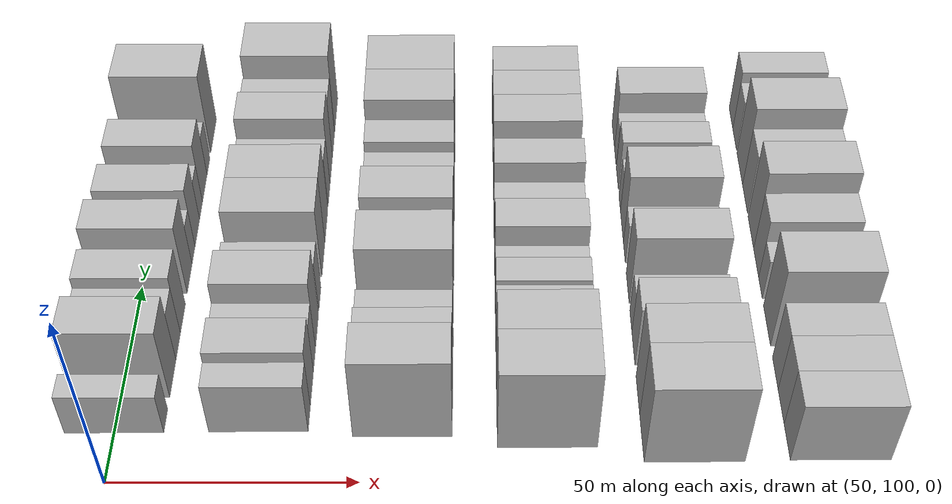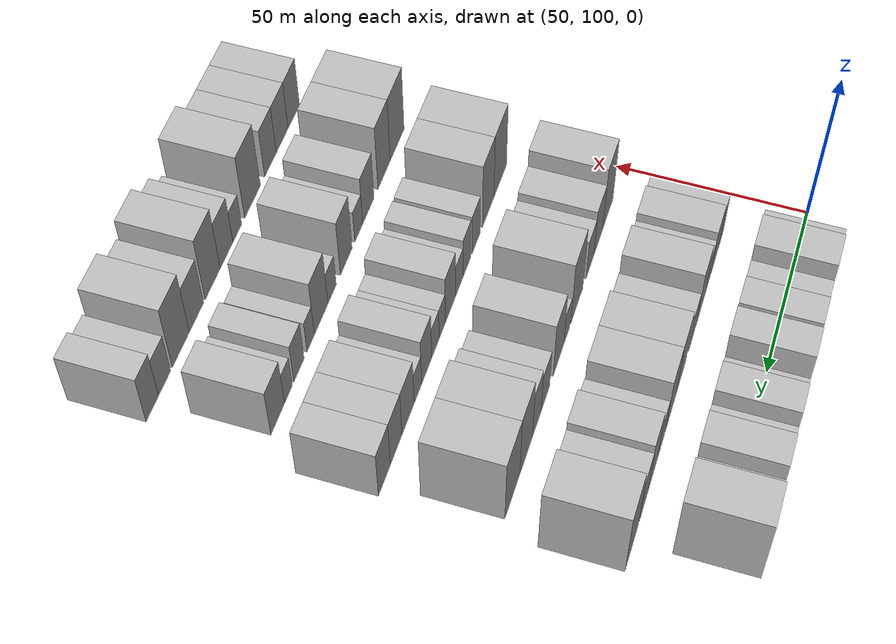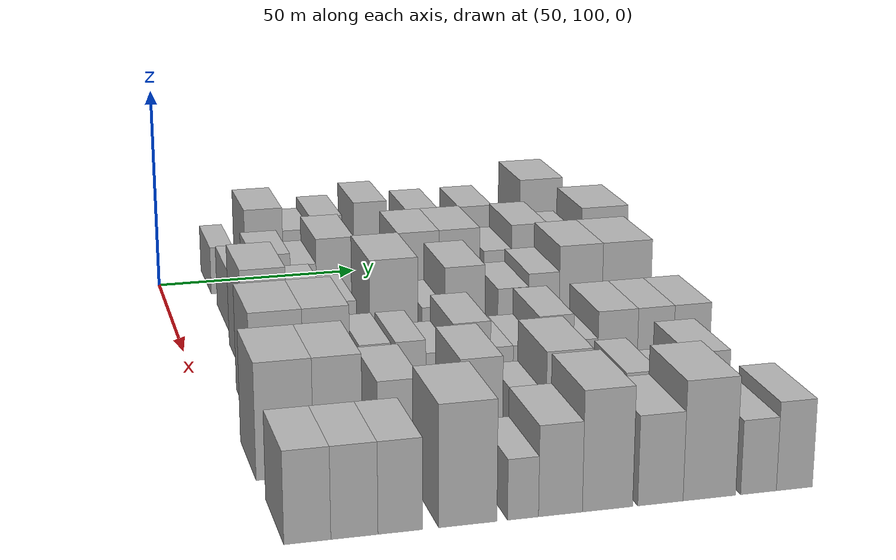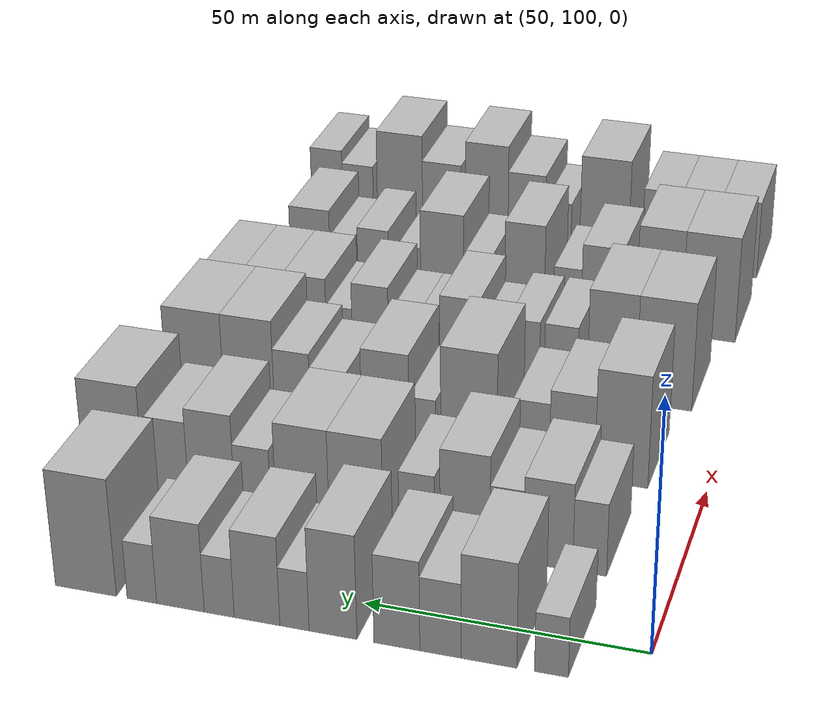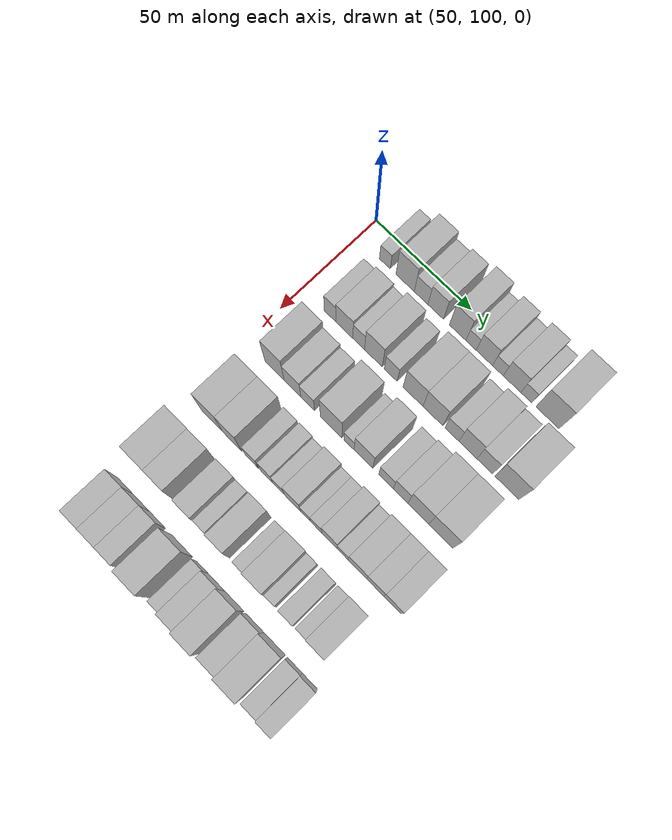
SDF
<sdf version="1.6">
 <world name="default">
  <model name="building_68">
   <static>1</static>
   <pose>50.0000 114.6178 0 0.000000 0.000000 0.000000</pose>
   <link name="link">
    <pose>0 0 6.00 0 0 0</pose>
    <collision name="collision"><geometry><box><size>20.0000 5.6977 12.0000</size></box></geometry></collision>
    <visual name="visual">
     <cast_shadows>0</cast_shadows>
     <geometry><box><size>20.0000 5.6977 12.0000</size></box></geometry>
     <material>
      <script>
       <uri>model://HANNAS_wall/materials/scripts</uri>
       <uri>model://HANNAS_wall/materials/textures</uri>
       <name>vrc/HANNAS_wall</name>
      </script>
     </material>
    </visual>
   </link>
  </model>
  <model name="building_69">
   <static>1</static>
   <pose>50.0000 125.2408 0 0.000000 0.000000 0.000000</pose>
   <link name="link">
    <pose>0 0 10.50 0 0 0</pose>
    <collision name="collision"><geometry><box><size>20.0000 9.5483 21.0000</size></box></geometry></collision>
    <visual name="visual">
     <cast_shadows>0</cast_shadows>
     <geometry><box><size>20.0000 9.5483 21.0000</size></box></geometry>
     <material>
      <script>
       <uri>model://HANNAS_wall/materials/scripts</uri>
       <uri>model://HANNAS_wall/materials/textures</uri>
       <name>vrc/HANNAS_wall</name>
      </script>
     </material>
    </visual>
   </link>
  </model>
  <model name="building_70">
   <static>1</static>
   <pose>50.0000 133.5757 0 0.000000 0.000000 0.000000</pose>
   <link name="link">
    <pose>0 0 7.50 0 0 0</pose>
    <collision name="collision"><geometry><box><size>20.0000 7.1214 15.0000</size></box></geometry></collision>
    <visual name="visual">
     <cast_shadows>0</cast_shadows>
     <geometry><box><size>20.0000 7.1214 15.0000</size></box></geometry>
     <material>
      <script>
       <uri>model://HANNAS_wall/materials/scripts</uri>
       <uri>model://HANNAS_wall/materials/textures</uri>
       <name>vrc/HANNAS_wall</name>
      </script>
     </material>
    </visual>
   </link>
  </model>
  <model name="building_71">
   <static>1</static>
   <pose>50.0000 141.1363 0 0.000000 0.000000 0.000000</pose>
   <link name="link">
    <pose>0 0 9.00 0 0 0</pose>
    <collision name="collision"><geometry><box><size>20.0000 7.9999 18.0000</size></box></geometry></collision>
    <visual name="visual">
     <cast_shadows>0</cast_shadows>
     <geometry><box><size>20.0000 7.9999 18.0000</size></box></geometry>
     <material>
      <script>
       <uri>model://HANNAS_wall/materials/scripts</uri>
       <uri>model://HANNAS_wall/materials/textures</uri>
       <name>vrc/HANNAS_wall</name>
      </script>
     </material>
    </visual>
   </link>
  </model>
  <model name="building_72">
   <static>1</static>
   <pose>50.0000 152.3691 0 0.000000 0.000000 0.000000</pose>
   <link name="link">
    <pose>0 0 10.50 0 0 0</pose>
    <collision name="collision"><geometry><box><size>20.0000 8.4655 21.0000</size></box></geometry></collision>
    <visual name="visual">
     <cast_shadows>0</cast_shadows>
     <geometry><box><size>20.0000 8.4655 21.0000</size></box></geometry>
     <material>
      <script>
       <uri>model://HANNAS_wall/materials/scripts</uri>
       <uri>model://HANNAS_wall/materials/textures</uri>
       <name>vrc/HANNAS_wall</name>
      </script>
     </material>
    </visual>
   </link>
  </model>
  <model name="building_73">
   <static>1</static>
   <pose>50.0000 159.2128 0 0.000000 0.000000 0.000000</pose>
   <link name="link">
    <pose>0 0 6.00 0 0 0</pose>
    <collision name="collision"><geometry><box><size>20.0000 5.2221 12.0000</size></box></geometry></collision>
    <visual name="visual">
     <cast_shadows>0</cast_shadows>
     <geometry><box><size>20.0000 5.2221 12.0000</size></box></geometry>
     <material>
      <script>
       <uri>model://HANNAS_wall/materials/scripts</uri>
       <uri>model://HANNAS_wall/materials/textures</uri>
       <name>vrc/HANNAS_wall</name>
      </script>
     </material>
    </visual>
   </link>
  </model>
  <model name="building_74">
   <static>1</static>
   <pose>50.0000 165.9320 0 0.000000 0.000000 0.000000</pose>
   <link name="link">
    <pose>0 0 9.00 0 0 0</pose>
    <collision name="collision"><geometry><box><size>20.0000 8.2162 18.0000</size></box></geometry></collision>
    <visual name="visual">
     <cast_shadows>0</cast_shadows>
     <geometry><box><size>20.0000 8.2162 18.0000</size></box></geometry>
     <material>
      <script>
       <uri>model://HANNAS_wall/materials/scripts</uri>
       <uri>model://HANNAS_wall/materials/textures</uri>
       <name>vrc/HANNAS_wall</name>
      </script>
     </material>
    </visual>
   </link>
  </model>
  <model name="building_75">
   <static>1</static>
   <pose>50.0000 172.7649 0 0.000000 0.000000 0.000000</pose>
   <link name="link">
    <pose>0 0 6.00 0 0 0</pose>
    <collision name="collision"><geometry><box><size>20.0000 5.4496 12.0000</size></box></geometry></collision>
    <visual name="visual">
     <cast_shadows>0</cast_shadows>
     <geometry><box><size>20.0000 5.4496 12.0000</size></box></geometry>
     <material>
      <script>
       <uri>model://HANNAS_wall/materials/scripts</uri>
       <uri>model://HANNAS_wall/materials/textures</uri>
       <name>vrc/HANNAS_wall</name>
      </script>
     </material>
    </visual>
   </link>
  </model>
  <model name="building_76">
   <static>1</static>
   <pose>50.0000 179.8505 0 0.000000 0.000000 0.000000</pose>
   <link name="link">
    <pose>0 0 9.00 0 0 0</pose>
    <collision name="collision"><geometry><box><size>20.0000 8.7217 18.0000</size></box></geometry></collision>
    <visual name="visual">
     <cast_shadows>0</cast_shadows>
     <geometry><box><size>20.0000 8.7217 18.0000</size></box></geometry>
     <material>
      <script>
       <uri>model://HANNAS_wall/materials/scripts</uri>
       <uri>model://HANNAS_wall/materials/textures</uri>
       <name>vrc/HANNAS_wall</name>
      </script>
     </material>
    </visual>
   </link>
  </model>
  <model name="building_77">
   <static>1</static>
   <pose>50.0000 186.9442 0 0.000000 0.000000 0.000000</pose>
   <link name="link">
    <pose>0 0 6.00 0 0 0</pose>
    <collision name="collision"><geometry><box><size>20.0000 5.4655 12.0000</size></box></geometry></collision>
    <visual name="visual">
     <cast_shadows>0</cast_shadows>
     <geometry><box><size>20.0000 5.4655 12.0000</size></box></geometry>
     <material>
      <script>
       <uri>model://HANNAS_wall/materials/scripts</uri>
       <uri>model://HANNAS_wall/materials/textures</uri>
       <name>vrc/HANNAS_wall</name>
      </script>
     </material>
    </visual>
   </link>
  </model>
  <model name="building_78">
   <static>1</static>
   <pose>50.0000 197.3817 0 0.000000 0.000000 0.000000</pose>
   <link name="link">
    <pose>0 0 12.00 0 0 0</pose>
    <collision name="collision"><geometry><box><size>20.0000 11.4096 24.0000</size></box></geometry></collision>
    <visual name="visual">
     <cast_shadows>0</cast_shadows>
     <geometry><box><size>20.0000 11.4096 24.0000</size></box></geometry>
     <material>
      <script>
       <uri>model://HANNAS_wall/materials/scripts</uri>
       <uri>model://HANNAS_wall/materials/textures</uri>
       <name>vrc/HANNAS_wall</name>
      </script>
     </material>
    </visual>
   </link>
  </model>
  <model name="building_184">
   <static>1</static>
   <pose>79.0000 115.0120 0 0.000000 0.000000 0.000000</pose>
   <link name="link">
    <pose>0 0 7.50 0 0 0</pose>
    <collision name="collision"><geometry><box><size>20.0000 6.0496 15.0000</size></box></geometry></collision>
    <visual name="visual">
     <cast_shadows>0</cast_shadows>
     <geometry><box><size>20.0000 6.0496 15.0000</size></box></geometry>
     <material>
      <script>
       <uri>model://HANNAS_wall/materials/scripts</uri>
       <uri>model://HANNAS_wall/materials/textures</uri>
       <name>vrc/HANNAS_wall</name>
      </script>
     </material>
    </visual>
   </link>
  </model>
  <model name="building_185">
   <static>1</static>
   <pose>79.0000 122.4650 0 0.000000 0.000000 0.000000</pose>
   <link name="link">
    <pose>0 0 9.00 0 0 0</pose>
    <collision name="collision"><geometry><box><size>20.0000 8.8563 18.0000</size></box></geometry></collision>
    <visual name="visual">
     <cast_shadows>0</cast_shadows>
     <geometry><box><size>20.0000 8.8563 18.0000</size></box></geometry>
     <material>
      <script>
       <uri>model://HANNAS_wall/materials/scripts</uri>
       <uri>model://HANNAS_wall/materials/textures</uri>
       <name>vrc/HANNAS_wall</name>
      </script>
     </material>
    </visual>
   </link>
  </model>
  <model name="building_186">
   <static>1</static>
   <pose>79.0000 129.9627 0 0.000000 0.000000 0.000000</pose>
   <link name="link">
    <pose>0 0 7.50 0 0 0</pose>
    <collision name="collision"><geometry><box><size>20.0000 6.1390 15.0000</size></box></geometry></collision>
    <visual name="visual">
     <cast_shadows>0</cast_shadows>
     <geometry><box><size>20.0000 6.1390 15.0000</size></box></geometry>
     <material>
      <script>
       <uri>model://HANNAS_wall/materials/scripts</uri>
       <uri>model://HANNAS_wall/materials/textures</uri>
       <name>vrc/HANNAS_wall</name>
      </script>
     </material>
    </visual>
   </link>
  </model>
  <model name="building_187">
   <static>1</static>
   <pose>79.0000 137.6191 0 0.000000 0.000000 0.000000</pose>
   <link name="link">
    <pose>0 0 10.50 0 0 0</pose>
    <collision name="collision"><geometry><box><size>20.0000 9.1738 21.0000</size></box></geometry></collision>
    <visual name="visual">
     <cast_shadows>0</cast_shadows>
     <geometry><box><size>20.0000 9.1738 21.0000</size></box></geometry>
     <material>
      <script>
       <uri>model://HANNAS_wall/materials/scripts</uri>
       <uri>model://HANNAS_wall/materials/textures</uri>
       <name>vrc/HANNAS_wall</name>
      </script>
     </material>
    </visual>
   </link>
  </model>
  <model name="building_188">
   <static>1</static>
   <pose>79.0000 146.5189 0 0.000000 0.000000 0.000000</pose>
   <link name="link">
    <pose>0 0 7.50 0 0 0</pose>
    <collision name="collision"><geometry><box><size>20.0000 6.6258 15.0000</size></box></geometry></collision>
    <visual name="visual">
     <cast_shadows>0</cast_shadows>
     <geometry><box><size>20.0000 6.6258 15.0000</size></box></geometry>
     <material>
      <script>
       <uri>model://HANNAS_wall/materials/scripts</uri>
       <uri>model://HANNAS_wall/materials/textures</uri>
       <name>vrc/HANNAS_wall</name>
      </script>
     </material>
    </visual>
   </link>
  </model>
  <model name="building_189">
   <static>1</static>
   <pose>79.0000 157.8905 0 0.000000 0.000000 0.000000</pose>
   <link name="link">
    <pose>0 0 10.50 0 0 0</pose>
    <collision name="collision"><geometry><box><size>20.0000 10.1173 21.0000</size></box></geometry></collision>
    <visual name="visual">
     <cast_shadows>0</cast_shadows>
     <geometry><box><size>20.0000 10.1173 21.0000</size></box></geometry>
     <material>
      <script>
       <uri>model://HANNAS_wall/materials/scripts</uri>
       <uri>model://HANNAS_wall/materials/textures</uri>
       <name>vrc/HANNAS_wall</name>
      </script>
     </material>
    </visual>
   </link>
  </model>
  <model name="building_190">
   <static>1</static>
   <pose>79.0000 167.9952 0 0.000000 0.000000 0.000000</pose>
   <link name="link">
    <pose>0 0 10.50 0 0 0</pose>
    <collision name="collision"><geometry><box><size>20.0000 10.0921 21.0000</size></box></geometry></collision>
    <visual name="visual">
     <cast_shadows>0</cast_shadows>
     <geometry><box><size>20.0000 10.0921 21.0000</size></box></geometry>
     <material>
      <script>
       <uri>model://HANNAS_wall/materials/scripts</uri>
       <uri>model://HANNAS_wall/materials/textures</uri>
       <name>vrc/HANNAS_wall</name>
      </script>
     </material>
    </visual>
   </link>
  </model>
  <model name="building_191">
   <static>1</static>
   <pose>79.0000 177.5131 0 0.000000 0.000000 0.000000</pose>
   <link name="link">
    <pose>0 0 7.50 0 0 0</pose>
    <collision name="collision"><geometry><box><size>20.0000 6.9435 15.0000</size></box></geometry></collision>
    <visual name="visual">
     <cast_shadows>0</cast_shadows>
     <geometry><box><size>20.0000 6.9435 15.0000</size></box></geometry>
     <material>
      <script>
       <uri>model://HANNAS_wall/materials/scripts</uri>
       <uri>model://HANNAS_wall/materials/textures</uri>
       <name>vrc/HANNAS_wall</name>
      </script>
     </material>
    </visual>
   </link>
  </model>
  <model name="building_192">
   <static>1</static>
   <pose>79.0000 185.4568 0 0.000000 0.000000 0.000000</pose>
   <link name="link">
    <pose>0 0 10.50 0 0 0</pose>
    <collision name="collision"><geometry><box><size>20.0000 8.9440 21.0000</size></box></geometry></collision>
    <visual name="visual">
     <cast_shadows>0</cast_shadows>
     <geometry><box><size>20.0000 8.9440 21.0000</size></box></geometry>
     <material>
      <script>
       <uri>model://HANNAS_wall/materials/scripts</uri>
       <uri>model://HANNAS_wall/materials/textures</uri>
       <name>vrc/HANNAS_wall</name>
      </script>
     </material>
    </visual>
   </link>
  </model>
  <model name="building_193">
   <static>1</static>
   <pose>79.0000 193.8151 0 0.000000 0.000000 0.000000</pose>
   <link name="link">
    <pose>0 0 9.00 0 0 0</pose>
    <collision name="collision"><geometry><box><size>20.0000 7.7726 18.0000</size></box></geometry></collision>
    <visual name="visual">
     <cast_shadows>0</cast_shadows>
     <geometry><box><size>20.0000 7.7726 18.0000</size></box></geometry>
     <material>
      <script>
       <uri>model://HANNAS_wall/materials/scripts</uri>
       <uri>model://HANNAS_wall/materials/textures</uri>
       <name>vrc/HANNAS_wall</name>
      </script>
     </material>
    </visual>
   </link>
  </model>
  <model name="building_194">
   <static>1</static>
   <pose>79.0000 204.6078 0 0.000000 0.000000 0.000000</pose>
   <link name="link">
    <pose>0 0 12.00 0 0 0</pose>
    <collision name="collision"><geometry><box><size>20.0000 11.8128 24.0000</size></box></geometry></collision>
    <visual name="visual">
     <cast_shadows>0</cast_shadows>
     <geometry><box><size>20.0000 11.8128 24.0000</size></box></geometry>
     <material>
      <script>
       <uri>model://HANNAS_wall/materials/scripts</uri>
       <uri>model://HANNAS_wall/materials/textures</uri>
       <name>vrc/HANNAS_wall</name>
      </script>
     </material>
    </visual>
   </link>
  </model>
  <model name="building_297">
   <static>1</static>
   <pose>108.0000 115.8125 0 0.000000 0.000000 0.000000</pose>
   <link name="link">
    <pose>0 0 12.00 0 0 0</pose>
    <collision name="collision"><geometry><box><size>20.0000 10.1006 24.0000</size></box></geometry></collision>
    <visual name="visual">
     <cast_shadows>0</cast_shadows>
     <geometry><box><size>20.0000 10.1006 24.0000</size></box></geometry>
     <material>
      <script>
       <uri>model://HANNAS_wall/materials/scripts</uri>
       <uri>model://HANNAS_wall/materials/textures</uri>
       <name>vrc/HANNAS_wall</name>
      </script>
     </material>
    </visual>
   </link>
  </model>
  <model name="building_298">
   <static>1</static>
   <pose>108.0000 125.2075 0 0.000000 0.000000 0.000000</pose>
   <link name="link">
    <pose>0 0 9.00 0 0 0</pose>
    <collision name="collision"><geometry><box><size>20.0000 8.6893 18.0000</size></box></geometry></collision>
    <visual name="visual">
     <cast_shadows>0</cast_shadows>
     <geometry><box><size>20.0000 8.6893 18.0000</size></box></geometry>
     <material>
      <script>
       <uri>model://HANNAS_wall/materials/scripts</uri>
       <uri>model://HANNAS_wall/materials/textures</uri>
       <name>vrc/HANNAS_wall</name>
      </script>
     </material>
    </visual>
   </link>
  </model>
  <model name="building_299">
   <static>1</static>
   <pose>108.0000 133.1054 0 0.000000 0.000000 0.000000</pose>
   <link name="link">
    <pose>0 0 7.50 0 0 0</pose>
    <collision name="collision"><geometry><box><size>20.0000 7.1064 15.0000</size></box></geometry></collision>
    <visual name="visual">
     <cast_shadows>0</cast_shadows>
     <geometry><box><size>20.0000 7.1064 15.0000</size></box></geometry>
     <material>
      <script>
       <uri>model://HANNAS_wall/materials/scripts</uri>
       <uri>model://HANNAS_wall/materials/textures</uri>
       <name>vrc/HANNAS_wall</name>
      </script>
     </material>
    </visual>
   </link>
  </model>
  <model name="building_300">
   <static>1</static>
   <pose>108.0000 145.1616 0 0.000000 0.000000 0.000000</pose>
   <link name="link">
    <pose>0 0 12.00 0 0 0</pose>
    <collision name="collision"><geometry><box><size>20.0000 11.0060 24.0000</size></box></geometry></collision>
    <visual name="visual">
     <cast_shadows>0</cast_shadows>
     <geometry><box><size>20.0000 11.0060 24.0000</size></box></geometry>
     <material>
      <script>
       <uri>model://HANNAS_wall/materials/scripts</uri>
       <uri>model://HANNAS_wall/materials/textures</uri>
       <name>vrc/HANNAS_wall</name>
      </script>
     </material>
    </visual>
   </link>
  </model>
  <model name="building_301">
   <static>1</static>
   <pose>108.0000 154.2971 0 0.000000 0.000000 0.000000</pose>
   <link name="link">
    <pose>0 0 6.00 0 0 0</pose>
    <collision name="collision"><geometry><box><size>20.0000 5.2651 12.0000</size></box></geometry></collision>
    <visual name="visual">
     <cast_shadows>0</cast_shadows>
     <geometry><box><size>20.0000 5.2651 12.0000</size></box></geometry>
     <material>
      <script>
       <uri>model://HANNAS_wall/materials/scripts</uri>
       <uri>model://HANNAS_wall/materials/textures</uri>
       <name>vrc/HANNAS_wall</name>
      </script>
     </material>
    </visual>
   </link>
  </model>
  <model name="building_302">
   <static>1</static>
   <pose>108.0000 161.6282 0 0.000000 0.000000 0.000000</pose>
   <link name="link">
    <pose>0 0 10.50 0 0 0</pose>
    <collision name="collision"><geometry><box><size>20.0000 9.3971 21.0000</size></box></geometry></collision>
    <visual name="visual">
     <cast_shadows>0</cast_shadows>
     <geometry><box><size>20.0000 9.3971 21.0000</size></box></geometry>
     <material>
      <script>
       <uri>model://HANNAS_wall/materials/scripts</uri>
       <uri>model://HANNAS_wall/materials/textures</uri>
       <name>vrc/HANNAS_wall</name>
      </script>
     </material>
    </visual>
   </link>
  </model>
  <model name="building_303">
   <static>1</static>
   <pose>108.0000 172.9795 0 0.000000 0.000000 0.000000</pose>
   <link name="link">
    <pose>0 0 7.50 0 0 0</pose>
    <collision name="collision"><geometry><box><size>20.0000 7.3055 15.0000</size></box></geometry></collision>
    <visual name="visual">
     <cast_shadows>0</cast_shadows>
     <geometry><box><size>20.0000 7.3055 15.0000</size></box></geometry>
     <material>
      <script>
       <uri>model://HANNAS_wall/materials/scripts</uri>
       <uri>model://HANNAS_wall/materials/textures</uri>
       <name>vrc/HANNAS_wall</name>
      </script>
     </material>
    </visual>
   </link>
  </model>
  <model name="building_304">
   <static>1</static>
   <pose>108.0000 180.2680 0 0.000000 0.000000 0.000000</pose>
   <link name="link">
    <pose>0 0 9.00 0 0 0</pose>
    <collision name="collision"><geometry><box><size>20.0000 7.2714 18.0000</size></box></geometry></collision>
    <visual name="visual">
     <cast_shadows>0</cast_shadows>
     <geometry><box><size>20.0000 7.2714 18.0000</size></box></geometry>
     <material>
      <script>
       <uri>model://HANNAS_wall/materials/scripts</uri>
       <uri>model://HANNAS_wall/materials/textures</uri>
       <name>vrc/HANNAS_wall</name>
      </script>
     </material>
    </visual>
   </link>
  </model>
  <model name="building_305">
   <static>1</static>
   <pose>108.0000 189.0621 0 0.000000 0.000000 0.000000</pose>
   <link name="link">
    <pose>0 0 12.00 0 0 0</pose>
    <collision name="collision"><geometry><box><size>20.0000 10.3168 24.0000</size></box></geometry></collision>
    <visual name="visual">
     <cast_shadows>0</cast_shadows>
     <geometry><box><size>20.0000 10.3168 24.0000</size></box></geometry>
     <material>
      <script>
       <uri>model://HANNAS_wall/materials/scripts</uri>
       <uri>model://HANNAS_wall/materials/textures</uri>
       <name>vrc/HANNAS_wall</name>
      </script>
     </material>
    </visual>
   </link>
  </model>
  <model name="building_306">
   <static>1</static>
   <pose>108.0000 200.1422 0 0.000000 0.000000 0.000000</pose>
   <link name="link">
    <pose>0 0 12.00 0 0 0</pose>
    <collision name="collision"><geometry><box><size>20.0000 11.8435 24.0000</size></box></geometry></collision>
    <visual name="visual">
     <cast_shadows>0</cast_shadows>
     <geometry><box><size>20.0000 11.8435 24.0000</size></box></geometry>
     <material>
      <script>
       <uri>model://HANNAS_wall/materials/scripts</uri>
       <uri>model://HANNAS_wall/materials/textures</uri>
       <name>vrc/HANNAS_wall</name>
      </script>
     </material>
    </visual>
   </link>
  </model>
  <model name="building_405">
   <static>1</static>
   <pose>137.0000 113.6808 0 0.000000 0.000000 0.000000</pose>
   <link name="link">
    <pose>0 0 12.00 0 0 0</pose>
    <collision name="collision"><geometry><box><size>20.0000 11.1541 24.0000</size></box></geometry></collision>
    <visual name="visual">
     <cast_shadows>0</cast_shadows>
     <geometry><box><size>20.0000 11.1541 24.0000</size></box></geometry>
     <material>
      <script>
       <uri>model://HANNAS_wall/materials/scripts</uri>
       <uri>model://HANNAS_wall/materials/textures</uri>
       <name>vrc/HANNAS_wall</name>
      </script>
     </material>
    </visual>
   </link>
  </model>
  <model name="building_406">
   <static>1</static>
   <pose>137.0000 124.1979 0 0.000000 0.000000 0.000000</pose>
   <link name="link">
    <pose>0 0 12.00 0 0 0</pose>
    <collision name="collision"><geometry><box><size>20.0000 9.8800 24.0000</size></box></geometry></collision>
    <visual name="visual">
     <cast_shadows>0</cast_shadows>
     <geometry><box><size>20.0000 9.8800 24.0000</size></box></geometry>
     <material>
      <script>
       <uri>model://HANNAS_wall/materials/scripts</uri>
       <uri>model://HANNAS_wall/materials/textures</uri>
       <name>vrc/HANNAS_wall</name>
      </script>
     </material>
    </visual>
   </link>
  </model>
  <model name="building_407">
   <static>1</static>
   <pose>137.0000 134.5091 0 0.000000 0.000000 0.000000</pose>
   <link name="link">
    <pose>0 0 7.50 0 0 0</pose>
    <collision name="collision"><geometry><box><size>20.0000 6.7424 15.0000</size></box></geometry></collision>
    <visual name="visual">
     <cast_shadows>0</cast_shadows>
     <geometry><box><size>20.0000 6.7424 15.0000</size></box></geometry>
     <material>
      <script>
       <uri>model://HANNAS_wall/materials/scripts</uri>
       <uri>model://HANNAS_wall/materials/textures</uri>
       <name>vrc/HANNAS_wall</name>
      </script>
     </material>
    </visual>
   </link>
  </model>
  <model name="building_408">
   <static>1</static>
   <pose>137.0000 142.1293 0 0.000000 0.000000 0.000000</pose>
   <link name="link">
    <pose>0 0 7.50 0 0 0</pose>
    <collision name="collision"><geometry><box><size>20.0000 6.4981 15.0000</size></box></geometry></collision>
    <visual name="visual">
     <cast_shadows>0</cast_shadows>
     <geometry><box><size>20.0000 6.4981 15.0000</size></box></geometry>
     <material>
      <script>
       <uri>model://HANNAS_wall/materials/scripts</uri>
       <uri>model://HANNAS_wall/materials/textures</uri>
       <name>vrc/HANNAS_wall</name>
      </script>
     </material>
    </visual>
   </link>
  </model>
  <model name="building_409">
   <static>1</static>
   <pose>137.0000 148.3256 0 0.000000 0.000000 0.000000</pose>
   <link name="link">
    <pose>0 0 6.00 0 0 0</pose>
    <collision name="collision"><geometry><box><size>20.0000 5.8945 12.0000</size></box></geometry></collision>
    <visual name="visual">
     <cast_shadows>0</cast_shadows>
     <geometry><box><size>20.0000 5.8945 12.0000</size></box></geometry>
     <material>
      <script>
       <uri>model://HANNAS_wall/materials/scripts</uri>
       <uri>model://HANNAS_wall/materials/textures</uri>
       <name>vrc/HANNAS_wall</name>
      </script>
     </material>
    </visual>
   </link>
  </model>
  <model name="building_410">
   <static>1</static>
   <pose>137.0000 155.3718 0 0.000000 0.000000 0.000000</pose>
   <link name="link">
    <pose>0 0 9.00 0 0 0</pose>
    <collision name="collision"><geometry><box><size>20.0000 8.1979 18.0000</size></box></geometry></collision>
    <visual name="visual">
     <cast_shadows>0</cast_shadows>
     <geometry><box><size>20.0000 8.1979 18.0000</size></box></geometry>
     <material>
      <script>
       <uri>model://HANNAS_wall/materials/scripts</uri>
       <uri>model://HANNAS_wall/materials/textures</uri>
       <name>vrc/HANNAS_wall</name>
      </script>
     </material>
    </visual>
   </link>
  </model>
  <model name="building_411">
   <static>1</static>
   <pose>137.0000 161.9679 0 0.000000 0.000000 0.000000</pose>
   <link name="link">
    <pose>0 0 6.00 0 0 0</pose>
    <collision name="collision"><geometry><box><size>20.0000 4.9944 12.0000</size></box></geometry></collision>
    <visual name="visual">
     <cast_shadows>0</cast_shadows>
     <geometry><box><size>20.0000 4.9944 12.0000</size></box></geometry>
     <material>
      <script>
       <uri>model://HANNAS_wall/materials/scripts</uri>
       <uri>model://HANNAS_wall/materials/textures</uri>
       <name>vrc/HANNAS_wall</name>
      </script>
     </material>
    </visual>
   </link>
  </model>
  <model name="building_412">
   <static>1</static>
   <pose>137.0000 167.3319 0 0.000000 0.000000 0.000000</pose>
   <link name="link">
    <pose>0 0 6.00 0 0 0</pose>
    <collision name="collision"><geometry><box><size>20.0000 5.7335 12.0000</size></box></geometry></collision>
    <visual name="visual">
     <cast_shadows>0</cast_shadows>
     <geometry><box><size>20.0000 5.7335 12.0000</size></box></geometry>
     <material>
      <script>
       <uri>model://HANNAS_wall/materials/scripts</uri>
       <uri>model://HANNAS_wall/materials/textures</uri>
       <name>vrc/HANNAS_wall</name>
      </script>
     </material>
    </visual>
   </link>
  </model>
  <model name="building_413">
   <static>1</static>
   <pose>137.0000 174.0344 0 0.000000 0.000000 0.000000</pose>
   <link name="link">
    <pose>0 0 9.00 0 0 0</pose>
    <collision name="collision"><geometry><box><size>20.0000 7.6715 18.0000</size></box></geometry></collision>
    <visual name="visual">
     <cast_shadows>0</cast_shadows>
     <geometry><box><size>20.0000 7.6715 18.0000</size></box></geometry>
     <material>
      <script>
       <uri>model://HANNAS_wall/materials/scripts</uri>
       <uri>model://HANNAS_wall/materials/textures</uri>
       <name>vrc/HANNAS_wall</name>
      </script>
     </material>
    </visual>
   </link>
  </model>
  <model name="building_414">
   <static>1</static>
   <pose>137.0000 180.6249 0 0.000000 0.000000 0.000000</pose>
   <link name="link">
    <pose>0 0 6.00 0 0 0</pose>
    <collision name="collision"><geometry><box><size>20.0000 5.5094 12.0000</size></box></geometry></collision>
    <visual name="visual">
     <cast_shadows>0</cast_shadows>
     <geometry><box><size>20.0000 5.5094 12.0000</size></box></geometry>
     <material>
      <script>
       <uri>model://HANNAS_wall/materials/scripts</uri>
       <uri>model://HANNAS_wall/materials/textures</uri>
       <name>vrc/HANNAS_wall</name>
      </script>
     </material>
    </visual>
   </link>
  </model>
  <model name="building_415">
   <static>1</static>
   <pose>137.0000 187.8762 0 0.000000 0.000000 0.000000</pose>
   <link name="link">
    <pose>0 0 9.00 0 0 0</pose>
    <collision name="collision"><geometry><box><size>20.0000 8.9933 18.0000</size></box></geometry></collision>
    <visual name="visual">
     <cast_shadows>0</cast_shadows>
     <geometry><box><size>20.0000 8.9933 18.0000</size></box></geometry>
     <material>
      <script>
       <uri>model://HANNAS_wall/materials/scripts</uri>
       <uri>model://HANNAS_wall/materials/textures</uri>
       <name>vrc/HANNAS_wall</name>
      </script>
     </material>
    </visual>
   </link>
  </model>
  <model name="building_416">
   <static>1</static>
   <pose>137.0000 196.5267 0 0.000000 0.000000 0.000000</pose>
   <link name="link">
    <pose>0 0 9.00 0 0 0</pose>
    <collision name="collision"><geometry><box><size>20.0000 8.3077 18.0000</size></box></geometry></collision>
    <visual name="visual">
     <cast_shadows>0</cast_shadows>
     <geometry><box><size>20.0000 8.3077 18.0000</size></box></geometry>
     <material>
      <script>
       <uri>model://HANNAS_wall/materials/scripts</uri>
       <uri>model://HANNAS_wall/materials/textures</uri>
       <name>vrc/HANNAS_wall</name>
      </script>
     </material>
    </visual>
   </link>
  </model>
  <model name="building_417">
   <static>1</static>
   <pose>137.0000 204.8929 0 0.000000 0.000000 0.000000</pose>
   <link name="link">
    <pose>0 0 9.00 0 0 0</pose>
    <collision name="collision"><geometry><box><size>20.0000 8.4247 18.0000</size></box></geometry></collision>
    <visual name="visual">
     <cast_shadows>0</cast_shadows>
     <geometry><box><size>20.0000 8.4247 18.0000</size></box></geometry>
     <material>
      <script>
       <uri>model://HANNAS_wall/materials/scripts</uri>
       <uri>model://HANNAS_wall/materials/textures</uri>
       <name>vrc/HANNAS_wall</name>
      </script>
     </material>
    </visual>
   </link>
  </model>
  <model name="building_524">
   <static>1</static>
   <pose>166.0000 110.2535 0 0.000000 0.000000 0.000000</pose>
   <link name="link">
    <pose>0 0 12.00 0 0 0</pose>
    <collision name="collision"><geometry><box><size>20.0000 11.2229 24.0000</size></box></geometry></collision>
    <visual name="visual">
     <cast_shadows>0</cast_shadows>
     <geometry><box><size>20.0000 11.2229 24.0000</size></box></geometry>
     <material>
      <script>
       <uri>model://HANNAS_wall/materials/scripts</uri>
       <uri>model://HANNAS_wall/materials/textures</uri>
       <name>vrc/HANNAS_wall</name>
      </script>
     </material>
    </visual>
   </link>
  </model>
  <model name="building_525">
   <static>1</static>
   <pose>166.0000 120.7102 0 0.000000 0.000000 0.000000</pose>
   <link name="link">
    <pose>0 0 12.00 0 0 0</pose>
    <collision name="collision"><geometry><box><size>20.0000 9.6904 24.0000</size></box></geometry></collision>
    <visual name="visual">
     <cast_shadows>0</cast_shadows>
     <geometry><box><size>20.0000 9.6904 24.0000</size></box></geometry>
     <material>
      <script>
       <uri>model://HANNAS_wall/materials/scripts</uri>
       <uri>model://HANNAS_wall/materials/textures</uri>
       <name>vrc/HANNAS_wall</name>
      </script>
     </material>
    </visual>
   </link>
  </model>
  <model name="building_526">
   <static>1</static>
   <pose>166.0000 132.8876 0 0.000000 0.000000 0.000000</pose>
   <link name="link">
    <pose>0 0 9.00 0 0 0</pose>
    <collision name="collision"><geometry><box><size>20.0000 8.6643 18.0000</size></box></geometry></collision>
    <visual name="visual">
     <cast_shadows>0</cast_shadows>
     <geometry><box><size>20.0000 8.6643 18.0000</size></box></geometry>
     <material>
      <script>
       <uri>model://HANNAS_wall/materials/scripts</uri>
       <uri>model://HANNAS_wall/materials/textures</uri>
       <name>vrc/HANNAS_wall</name>
      </script>
     </material>
    </visual>
   </link>
  </model>
  <model name="building_527">
   <static>1</static>
   <pose>166.0000 140.1995 0 0.000000 0.000000 0.000000</pose>
   <link name="link">
    <pose>0 0 6.00 0 0 0</pose>
    <collision name="collision"><geometry><box><size>20.0000 5.9595 12.0000</size></box></geometry></collision>
    <visual name="visual">
     <cast_shadows>0</cast_shadows>
     <geometry><box><size>20.0000 5.9595 12.0000</size></box></geometry>
     <material>
      <script>
       <uri>model://HANNAS_wall/materials/scripts</uri>
       <uri>model://HANNAS_wall/materials/textures</uri>
       <name>vrc/HANNAS_wall</name>
      </script>
     </material>
    </visual>
   </link>
  </model>
  <model name="building_528">
   <static>1</static>
   <pose>166.0000 149.4907 0 0.000000 0.000000 0.000000</pose>
   <link name="link">
    <pose>0 0 10.50 0 0 0</pose>
    <collision name="collision"><geometry><box><size>20.0000 8.6230 21.0000</size></box></geometry></collision>
    <visual name="visual">
     <cast_shadows>0</cast_shadows>
     <geometry><box><size>20.0000 8.6230 21.0000</size></box></geometry>
     <material>
      <script>
       <uri>model://HANNAS_wall/materials/scripts</uri>
       <uri>model://HANNAS_wall/materials/textures</uri>
       <name>vrc/HANNAS_wall</name>
      </script>
     </material>
    </visual>
   </link>
  </model>
  <model name="building_529">
   <static>1</static>
   <pose>166.0000 159.7772 0 0.000000 0.000000 0.000000</pose>
   <link name="link">
    <pose>0 0 6.00 0 0 0</pose>
    <collision name="collision"><geometry><box><size>20.0000 5.9499 12.0000</size></box></geometry></collision>
    <visual name="visual">
     <cast_shadows>0</cast_shadows>
     <geometry><box><size>20.0000 5.9499 12.0000</size></box></geometry>
     <material>
      <script>
       <uri>model://HANNAS_wall/materials/scripts</uri>
       <uri>model://HANNAS_wall/materials/textures</uri>
       <name>vrc/HANNAS_wall</name>
      </script>
     </material>
    </visual>
   </link>
  </model>
  <model name="building_530">
   <static>1</static>
   <pose>166.0000 167.5281 0 0.000000 0.000000 0.000000</pose>
   <link name="link">
    <pose>0 0 10.50 0 0 0</pose>
    <collision name="collision"><geometry><box><size>20.0000 9.5521 21.0000</size></box></geometry></collision>
    <visual name="visual">
     <cast_shadows>0</cast_shadows>
     <geometry><box><size>20.0000 9.5521 21.0000</size></box></geometry>
     <material>
      <script>
       <uri>model://HANNAS_wall/materials/scripts</uri>
       <uri>model://HANNAS_wall/materials/textures</uri>
       <name>vrc/HANNAS_wall</name>
      </script>
     </material>
    </visual>
   </link>
  </model>
  <model name="building_531">
   <static>1</static>
   <pose>166.0000 174.8528 0 0.000000 0.000000 0.000000</pose>
   <link name="link">
    <pose>0 0 6.00 0 0 0</pose>
    <collision name="collision"><geometry><box><size>20.0000 5.0972 12.0000</size></box></geometry></collision>
    <visual name="visual">
     <cast_shadows>0</cast_shadows>
     <geometry><box><size>20.0000 5.0972 12.0000</size></box></geometry>
     <material>
      <script>
       <uri>model://HANNAS_wall/materials/scripts</uri>
       <uri>model://HANNAS_wall/materials/textures</uri>
       <name>vrc/HANNAS_wall</name>
      </script>
     </material>
    </visual>
   </link>
  </model>
  <model name="building_532">
   <static>1</static>
   <pose>166.0000 182.8700 0 0.000000 0.000000 0.000000</pose>
   <link name="link">
    <pose>0 0 7.50 0 0 0</pose>
    <collision name="collision"><geometry><box><size>20.0000 6.9372 15.0000</size></box></geometry></collision>
    <visual name="visual">
     <cast_shadows>0</cast_shadows>
     <geometry><box><size>20.0000 6.9372 15.0000</size></box></geometry>
     <material>
      <script>
       <uri>model://HANNAS_wall/materials/scripts</uri>
       <uri>model://HANNAS_wall/materials/textures</uri>
       <name>vrc/HANNAS_wall</name>
      </script>
     </material>
    </visual>
   </link>
  </model>
  <model name="building_533">
   <static>1</static>
   <pose>166.0000 189.9341 0 0.000000 0.000000 0.000000</pose>
   <link name="link">
    <pose>0 0 6.00 0 0 0</pose>
    <collision name="collision"><geometry><box><size>20.0000 5.1910 12.0000</size></box></geometry></collision>
    <visual name="visual">
     <cast_shadows>0</cast_shadows>
     <geometry><box><size>20.0000 5.1910 12.0000</size></box></geometry>
     <material>
      <script>
       <uri>model://HANNAS_wall/materials/scripts</uri>
       <uri>model://HANNAS_wall/materials/textures</uri>
       <name>vrc/HANNAS_wall</name>
      </script>
     </material>
    </visual>
   </link>
  </model>
  <model name="building_534">
   <static>1</static>
   <pose>166.0000 197.0126 0 0.000000 0.000000 0.000000</pose>
   <link name="link">
    <pose>0 0 9.00 0 0 0</pose>
    <collision name="collision"><geometry><box><size>20.0000 8.9659 18.0000</size></box></geometry></collision>
    <visual name="visual">
     <cast_shadows>0</cast_shadows>
     <geometry><box><size>20.0000 8.9659 18.0000</size></box></geometry>
     <material>
      <script>
       <uri>model://HANNAS_wall/materials/scripts</uri>
       <uri>model://HANNAS_wall/materials/textures</uri>
       <name>vrc/HANNAS_wall</name>
      </script>
     </material>
    </visual>
   </link>
  </model>
  <model name="building_629">
   <static>1</static>
   <pose>195.0000 109.2760 0 0.000000 0.000000 0.000000</pose>
   <link name="link">
    <pose>0 0 9.00 0 0 0</pose>
    <collision name="collision"><geometry><box><size>20.0000 8.5335 18.0000</size></box></geometry></collision>
    <visual name="visual">
     <cast_shadows>0</cast_shadows>
     <geometry><box><size>20.0000 8.5335 18.0000</size></box></geometry>
     <material>
      <script>
       <uri>model://HANNAS_wall/materials/scripts</uri>
       <uri>model://HANNAS_wall/materials/textures</uri>
       <name>vrc/HANNAS_wall</name>
      </script>
     </material>
    </visual>
   </link>
  </model>
  <model name="building_630">
   <static>1</static>
   <pose>195.0000 117.8627 0 0.000000 0.000000 0.000000</pose>
   <link name="link">
    <pose>0 0 9.00 0 0 0</pose>
    <collision name="collision"><geometry><box><size>20.0000 8.6399 18.0000</size></box></geometry></collision>
    <visual name="visual">
     <cast_shadows>0</cast_shadows>
     <geometry><box><size>20.0000 8.6399 18.0000</size></box></geometry>
     <material>
      <script>
       <uri>model://HANNAS_wall/materials/scripts</uri>
       <uri>model://HANNAS_wall/materials/textures</uri>
       <name>vrc/HANNAS_wall</name>
      </script>
     </material>
    </visual>
   </link>
  </model>
  <model name="building_631">
   <static>1</static>
   <pose>195.0000 126.3236 0 0.000000 0.000000 0.000000</pose>
   <link name="link">
    <pose>0 0 9.00 0 0 0</pose>
    <collision name="collision"><geometry><box><size>20.0000 8.2820 18.0000</size></box></geometry></collision>
    <visual name="visual">
     <cast_shadows>0</cast_shadows>
     <geometry><box><size>20.0000 8.2820 18.0000</size></box></geometry>
     <material>
      <script>
       <uri>model://HANNAS_wall/materials/scripts</uri>
       <uri>model://HANNAS_wall/materials/textures</uri>
       <name>vrc/HANNAS_wall</name>
      </script>
     </material>
    </visual>
   </link>
  </model>
  <model name="building_632">
   <static>1</static>
   <pose>195.0000 138.9587 0 0.000000 0.000000 0.000000</pose>
   <link name="link">
    <pose>0 0 12.00 0 0 0</pose>
    <collision name="collision"><geometry><box><size>20.0000 10.9880 24.0000</size></box></geometry></collision>
    <visual name="visual">
     <cast_shadows>0</cast_shadows>
     <geometry><box><size>20.0000 10.9880 24.0000</size></box></geometry>
     <material>
      <script>
       <uri>model://HANNAS_wall/materials/scripts</uri>
       <uri>model://HANNAS_wall/materials/textures</uri>
       <name>vrc/HANNAS_wall</name>
      </script>
     </material>
    </visual>
   </link>
  </model>
  <model name="building_633">
   <static>1</static>
   <pose>195.0000 149.4208 0 0.000000 0.000000 0.000000</pose>
   <link name="link">
    <pose>0 0 6.00 0 0 0</pose>
    <collision name="collision"><geometry><box><size>20.0000 5.9363 12.0000</size></box></geometry></collision>
    <visual name="visual">
     <cast_shadows>0</cast_shadows>
     <geometry><box><size>20.0000 5.9363 12.0000</size></box></geometry>
     <material>
      <script>
       <uri>model://HANNAS_wall/materials/scripts</uri>
       <uri>model://HANNAS_wall/materials/textures</uri>
       <name>vrc/HANNAS_wall</name>
      </script>
     </material>
    </visual>
   </link>
  </model>
  <model name="building_634">
   <static>1</static>
   <pose>195.0000 156.6186 0 0.000000 0.000000 0.000000</pose>
   <link name="link">
    <pose>0 0 9.00 0 0 0</pose>
    <collision name="collision"><geometry><box><size>20.0000 8.4592 18.0000</size></box></geometry></collision>
    <visual name="visual">
     <cast_shadows>0</cast_shadows>
     <geometry><box><size>20.0000 8.4592 18.0000</size></box></geometry>
     <material>
      <script>
       <uri>model://HANNAS_wall/materials/scripts</uri>
       <uri>model://HANNAS_wall/materials/textures</uri>
       <name>vrc/HANNAS_wall</name>
      </script>
     </material>
    </visual>
   </link>
  </model>
  <model name="building_635">
   <static>1</static>
   <pose>195.0000 165.7668 0 0.000000 0.000000 0.000000</pose>
   <link name="link">
    <pose>0 0 12.00 0 0 0</pose>
    <collision name="collision"><geometry><box><size>20.0000 9.8373 24.0000</size></box></geometry></collision>
    <visual name="visual">
     <cast_shadows>0</cast_shadows>
     <geometry><box><size>20.0000 9.8373 24.0000</size></box></geometry>
     <material>
      <script>
       <uri>model://HANNAS_wall/materials/scripts</uri>
       <uri>model://HANNAS_wall/materials/textures</uri>
       <name>vrc/HANNAS_wall</name>
      </script>
     </material>
    </visual>
   </link>
  </model>
  <model name="building_636">
   <static>1</static>
   <pose>195.0000 176.1758 0 0.000000 0.000000 0.000000</pose>
   <link name="link">
    <pose>0 0 9.00 0 0 0</pose>
    <collision name="collision"><geometry><box><size>20.0000 8.9806 18.0000</size></box></geometry></collision>
    <visual name="visual">
     <cast_shadows>0</cast_shadows>
     <geometry><box><size>20.0000 8.9806 18.0000</size></box></geometry>
     <material>
      <script>
       <uri>model://HANNAS_wall/materials/scripts</uri>
       <uri>model://HANNAS_wall/materials/textures</uri>
       <name>vrc/HANNAS_wall</name>
      </script>
     </material>
    </visual>
   </link>
  </model>
  <model name="building_637">
   <static>1</static>
   <pose>195.0000 185.9520 0 0.000000 0.000000 0.000000</pose>
   <link name="link">
    <pose>0 0 12.00 0 0 0</pose>
    <collision name="collision"><geometry><box><size>20.0000 10.5719 24.0000</size></box></geometry></collision>
    <visual name="visual">
     <cast_shadows>0</cast_shadows>
     <geometry><box><size>20.0000 10.5719 24.0000</size></box></geometry>
     <material>
      <script>
       <uri>model://HANNAS_wall/materials/scripts</uri>
       <uri>model://HANNAS_wall/materials/textures</uri>
       <name>vrc/HANNAS_wall</name>
      </script>
     </material>
    </visual>
   </link>
  </model>
  <model name="building_638">
   <static>1</static>
   <pose>195.0000 195.8692 0 0.000000 0.000000 0.000000</pose>
   <link name="link">
    <pose>0 0 7.50 0 0 0</pose>
    <collision name="collision"><geometry><box><size>20.0000 7.2623 15.0000</size></box></geometry></collision>
    <visual name="visual">
     <cast_shadows>0</cast_shadows>
     <geometry><box><size>20.0000 7.2623 15.0000</size></box></geometry>
     <material>
      <script>
       <uri>model://HANNAS_wall/materials/scripts</uri>
       <uri>model://HANNAS_wall/materials/textures</uri>
       <name>vrc/HANNAS_wall</name>
      </script>
     </material>
    </visual>
   </link>
  </model>
  <model name="building_639">
   <static>1</static>
   <pose>195.0000 203.1931 0 0.000000 0.000000 0.000000</pose>
   <link name="link">
    <pose>0 0 9.00 0 0 0</pose>
    <collision name="collision"><geometry><box><size>20.0000 7.3855 18.0000</size></box></geometry></collision>
    <visual name="visual">
     <cast_shadows>0</cast_shadows>
     <geometry><box><size>20.0000 7.3855 18.0000</size></box></geometry>
     <material>
      <script>
       <uri>model://HANNAS_wall/materials/scripts</uri>
       <uri>model://HANNAS_wall/materials/textures</uri>
       <name>vrc/HANNAS_wall</name>
      </script>
     </material>
    </visual>
   </link>
  </model>
 </world>
</sdf>
